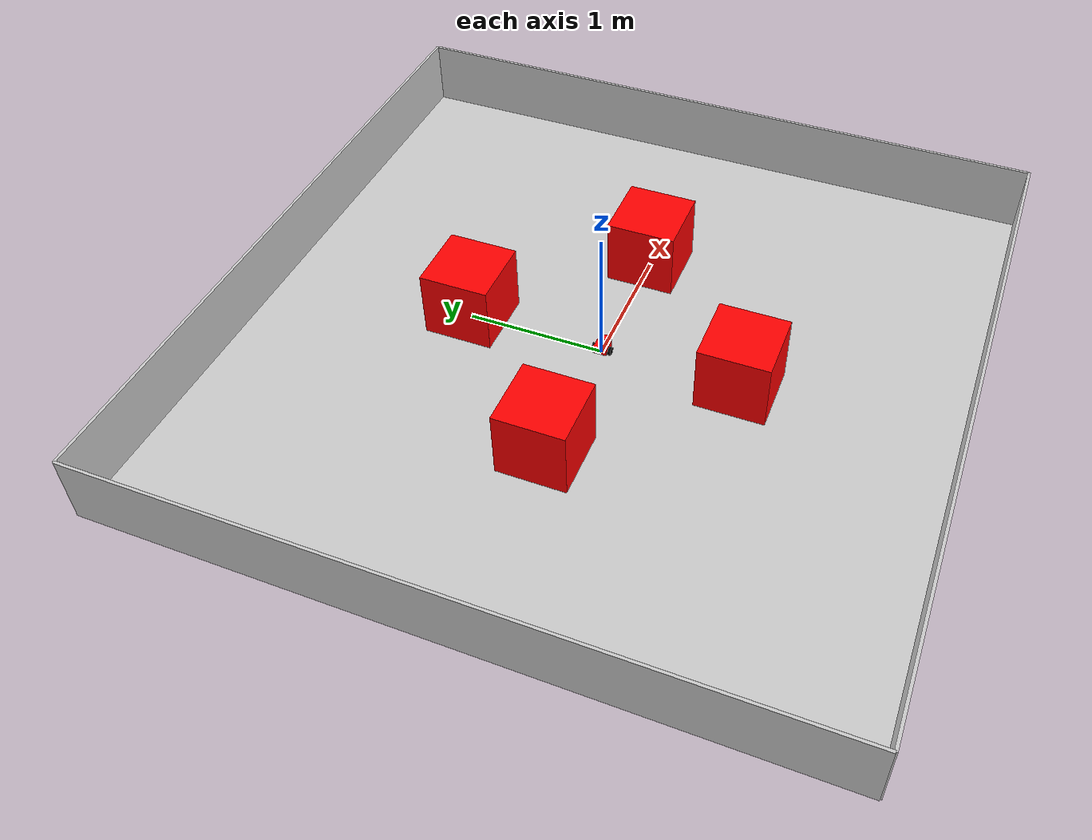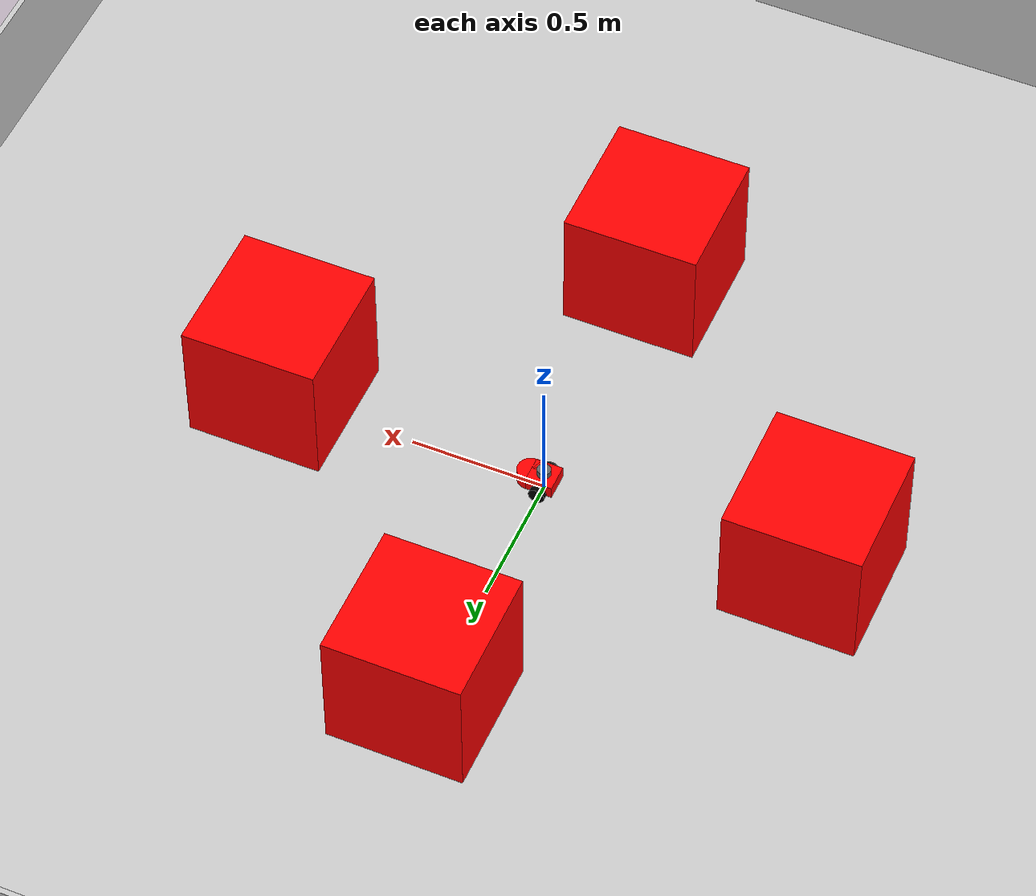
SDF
<?xml version="1.0" ?>
<sdf version="1.8">
    <world name="diff_drive_world">

        <scene>
            <grid>false</grid>
        </scene>

        <physics name="1ms" type="ignored">
            <max_step_size>0.001</max_step_size>
            <real_time_factor>1.0</real_time_factor>
        </physics>

        <!-- PLUGINS -->
        <plugin
            filename="gz-sim-physics-system"
            name="gz::sim::systems::Physics">
        </plugin>
        <plugin
            filename="gz-sim-user-commands-system"
            name="gz::sim::systems::UserCommands">
        </plugin>
        <plugin
            filename="gz-sim-scene-broadcaster-system"
            name="gz::sim::systems::SceneBroadcaster">
        </plugin>
        <plugin
            filename="gz-sim-sensors-system"
            name="gz::sim::systems::Sensors">
            <render_engine>ogre2</render_engine>
        </plugin>

        <light type="directional" name="sun">
            <cast_shadows>true</cast_shadows>
            <pose>0 0 10 0 0 0</pose>
            <diffuse>0.8 0.8 0.8 1</diffuse>
            <specular>0.2 0.2 0.2 1</specular>
            <attenuation>
                <range>1000</range>
                <constant>0.9</constant>
                <linear>0.01</linear>
                <quadratic>0.001</quadratic>
            </attenuation>
            <direction>-0.5 0.1 -0.9</direction>
        </light>

        <!-- MODELS -->
        <model name="arena">
            <static>true</static>
            <link name="floor">
                <collision name="collision">
                    <geometry>
                        <plane>
                            <normal>0 0 1</normal>
                        </plane>
                    </geometry>
                </collision>
                <visual name="visual">
                    <geometry>
                        <plane>
                            <normal>0 0 1</normal>
                            <size>5 5</size>
                        </plane>
                    </geometry>
                    <material>
                        <ambient>0.8 0.8 0.8 1</ambient>
                        <diffuse>0.8 0.8 0.8 1</diffuse>
                        <specular>0.8 0.8 0.8 1</specular>
                    </material>
                </visual>
            </link>

            <link name="w1">
                <pose relative_to="floor">0 2.5 0.25 0 0 0</pose>
                <collision name="collision">
                    <geometry>
                        <box>
                            <size>5 0.02 0.5</size>
                        </box>
                    </geometry>
                </collision>
                <visual name="visual">
                    <geometry>
                        <box>
                            <size>5 0.02 0.5</size>
                        </box>
                    </geometry>
                    <material>
                        <ambient>0.8 0.8 0.8 1</ambient>
                        <diffuse>0.8 0.8 0.8 1</diffuse>
                        <specular>0.8 0.8 0.8 1</specular>
                    </material>
                </visual>
            </link>
            <link name="w2">
                <pose relative_to="floor">0 -2.5 0.25 0 0 0</pose>
                <collision name="collision">
                    <geometry>
                        <box>
                            <size>5 0.02 0.5</size>
                        </box>
                    </geometry>
                </collision>
                <visual name="visual">
                    <geometry>
                        <box>
                            <size>5 0.02 0.5</size>
                        </box>
                    </geometry>
                    <material>
                        <ambient>0.8 0.8 0.8 1</ambient>
                        <diffuse>0.8 0.8 0.8 1</diffuse>
                        <specular>0.8 0.8 0.8 1</specular>
                    </material>
                </visual>
            </link>
            <link name="w3">
                <pose relative_to="floor">2.5 0 0.25 0 0 0</pose>
                <collision name="collision">
                    <geometry>
                        <box>
                            <size>0.02 5 0.5</size>
                        </box>
                    </geometry>
                </collision>
                <visual name="visual">
                    <geometry>
                        <box>
                            <size>0.02 5 0.5</size>
                        </box>
                    </geometry>
                    <material>
                        <ambient>0.8 0.8 0.8 1</ambient>
                        <diffuse>0.8 0.8 0.8 1</diffuse>
                        <specular>0.8 0.8 0.8 1</specular>
                    </material>
                </visual>
            </link>
            <link name="w4">
                <pose relative_to="floor">-2.5 0 0.25 0 0 0</pose>
                <collision name="collision">
                    <geometry>
                        <box>
                            <size>0.02 5 0.5</size>
                        </box>
                    </geometry>
                </collision>
                <visual name="visual">
                    <geometry>
                        <box>
                            <size>0.02 5 0.5</size>
                        </box>
                    </geometry>
                    <material>
                        <ambient>0.8 0.8 0.8 1</ambient>
                        <diffuse>0.8 0.8 0.8 1</diffuse>
                        <specular>0.8 0.8 0.8 1</specular>
                    </material>
                </visual>
            </link>
        </model>

        <model name='diff_drive' canonical_link='base_link'>

            <pose relative_to='world'>0 0 0 0 0 0</pose>

            <!-- Robot body -->
            <link name="base_link">
                <pose relative_to='__model__'>0 0 0.05 0 0 0</pose>
                <inertial>
                    <mass>1.14395</mass>
                    <inertia>
                        <ixx>0.095329</ixx>
                        <ixy>0</ixy>
                        <ixz>0</ixz>
                        <iyy>0.381317</iyy>
                        <iyz>0</iyz>
                        <izz>0.476646</izz>
                    </inertia>
                </inertial>
                <visual name="visual">
                    <geometry>
                        <box>
                            <size>0.1 0.1 0.05</size>
                        </box>
                    </geometry>
                    <material>
                        <ambient>1.0 0.0 0.0 1</ambient>
                        <diffuse>1.0 0.0 0.0 1</diffuse>
                        <specular>1.0 0.0 0.0 1</specular>
                    </material>
                </visual>
                <collision name="collision">
                    <geometry>
                        <box>
                            <size>0.1 0.1 0.05</size>
                        </box>
                    </geometry>
                </collision>
            </link>

            <joint name="base_link_to_front_frame" type="fixed">
                <pose relative_to="base_link">0.05 0 0 0 0 0</pose>
                <parent>base_link</parent>
                <child>front_frame</child>
            </joint>

            <link name="front_frame">
                <pose relative_to="base_link_to_front_frame"/>
                <inertial>
                    <mass>1.14395</mass>
                    <inertia>
                        <ixx>0.095329</ixx>
                        <ixy>0</ixy>
                        <ixz>0</ixz>
                        <iyy>0.381317</iyy>
                        <iyz>0</iyz>
                        <izz>0.476646</izz>
                    </inertia>
                </inertial>
                <visual name="visual">
                    <geometry>
                        <cylinder>
                            <radius>0.05</radius>
                            <length>0.05</length>
                        </cylinder>
                    </geometry>
                    <material>
                        <ambient>1.0 0.0 0.0 1</ambient>
                        <diffuse>1.0 0.0 0.0 1</diffuse>
                        <specular>1.0 0.0 0.0 1</specular>
                    </material>
                </visual>
                <collision name="collision">
                    <geometry>
                        <cylinder>
                            <radius>0.05</radius>
                            <length>0.05</length>
                        </cylinder>
                    </geometry>
                </collision>
            </link>

            <joint name="base_link_to_lidar" type="fixed">
                <pose relative_to="base_link">0 0 0.0375 0 0 0</pose>
                <parent>base_link</parent>
                <child>lidar</child>
            </joint>

            <link name="lidar">
                <pose relative_to="base_link_to_lidar"/>
                <inertial>
                    <mass>0.5</mass>
                    <inertia>
                        <ixx>0.000104</ixx>
                        <ixy>0</ixy>
                        <ixz>0</ixz>
                        <iyy>0.000104</iyy>
                        <iyz>0</iyz>
                        <izz>0.000156</izz>
                    </inertia>
                </inertial>
                <visual name="visual">
                    <geometry>
                        <cylinder>
                            <radius>0.025</radius>
                            <length>0.025</length>
                        </cylinder>
                    </geometry>
                    <material>
                        <ambient>0.4 0.4 0.4 1</ambient>
                        <diffuse>0.4 0.4 0.4 1</diffuse>
                        <specular>0.4 0.4 0.4 1</specular>
                    </material>
                </visual>
                <collision name="collision">
                    <geometry>
                        <cylinder>
                            <radius>0.025</radius>
                            <length>0.025</length>
                        </cylinder>
                    </geometry>
                </collision>

                <sensor name='gpu_lidar' type='gpu_lidar'>"
                    <pose relative_to='lidar'>0 0 0 0 0 0</pose>
                    <ignition_frame_id>diff_drive/lidar</ignition_frame_id>
                    <topic>scan</topic>
                    <update_rate>10</update_rate>
                    <ray>
                        <scan>
                            <horizontal>
                                <samples>640</samples>
                                <resolution>1</resolution>
                                <min_angle>-3.14</min_angle>
                                <max_angle>3.14</max_angle>
                            </horizontal>
                            <vertical>
                                <samples>1</samples>
                                <resolution>0.01</resolution>
                                <min_angle>0</min_angle>
                                <max_angle>0</max_angle>
                            </vertical>
                        </scan>
                        <range>
                            <min>0.08</min>
                            <max>10.0</max>
                            <resolution>0.01</resolution>
                        </range>
                    </ray>
                    <always_on>1</always_on>
                    <visualize>true</visualize>
                </sensor>
            </link>

            <!-- Wheel 1 -->
            <joint name="motor1" type="revolute">
                <pose relative_to='wheel1'/>
                <parent>base_link</parent>
                <child>wheel1</child>
                <axis>
                    <xyz expressed_in='__model__'>0 1 0</xyz> <!--can be descired to any frame or even arbitrary frames-->
                    <limit>
                        <lower>-1.79769e+308</lower>    <!--negative infinity-->
                        <upper>1.79769e+308</upper>     <!--positive infinity-->
                    </limit>
                </axis>
            </joint>

            <link name="wheel1">
                <pose relative_to="base_link">0 0.06 -0.02 1.5707 0 0</pose>
                <inertial>
                    <mass>0.5</mass>
                    <inertia>
                        <ixx>0.000129</ixx>
                        <ixy>0</ixy>
                        <ixz>0</ixz>
                        <iyy>0.000129</iyy>
                        <iyz>0</iyz>
                        <izz>0.000225</izz>
                    </inertia>
                </inertial>
                <visual name="visual">
                    <geometry>
                        <cylinder>
                            <radius>0.03</radius>
                            <length>0.02</length>
                        </cylinder>
                    </geometry>
                    <material>
                        <ambient>0.0 0.0 0.0 1</ambient>
                        <diffuse>0.0 0.0 0.0 1</diffuse>
                        <specular>0.0 0.0 0.0 1</specular>
                    </material>
                </visual>
                <collision name="collision">
                    <geometry>
                        <cylinder>
                            <radius>0.03</radius>
                            <length>0.02</length>
                        </cylinder>
                    </geometry>
                </collision>
            </link>

            <!-- Wheel 2 -->
            <joint name="motor2" type="revolute">
                <pose relative_to='wheel2'/>
                <parent>base_link</parent>
                <child>wheel2</child>
                <axis>
                    <xyz expressed_in='__model__'>0 1 0</xyz> <!--can be descired to any frame or even arbitrary frames-->
                    <limit>
                        <lower>-1.79769e+308</lower>    <!--negative infinity-->
                        <upper>1.79769e+308</upper>     <!--positive infinity-->
                    </limit>
                </axis>
            </joint>

            <link name="wheel2">
                <pose relative_to="base_link">0 -0.06 -0.02 1.5707 0 0</pose>
                <inertial>
                    <mass>0.5</mass>
                    <inertia>
                        <ixx>0.000129</ixx>
                        <ixy>0</ixy>
                        <ixz>0</ixz>
                        <iyy>0.000129</iyy>
                        <iyz>0</iyz>
                        <izz>0.000225</izz>
                    </inertia>
                </inertial>
                <visual name="visual">
                    <geometry>
                        <cylinder>
                            <radius>0.03</radius>
                            <length>0.02</length>
                        </cylinder>
                    </geometry>
                    <material>
                        <ambient>0.0 0.0 0.0 1</ambient>
                        <diffuse>0.0 0.0 0.0 1</diffuse>
                        <specular>0.0 0.0 0.0 1</specular>
                    </material>
                </visual>
                <collision name="collision">
                    <geometry>
                        <cylinder>
                            <radius>0.03</radius>
                            <length>0.02</length>
                        </cylinder>
                    </geometry>
                </collision>
            </link>

            <!-- Caster Wheel -->
            <joint name="base_link_to_caster" type="ball">
                <pose relative_to='caster'/>
                <parent>base_link</parent>
                <child>caster</child>
            </joint>

            <link name="caster">
                <pose relative_to="base_link">0.06 0 -0.0375 0 0 0</pose>
                <inertial>
                    <mass>0.5</mass>
                    <inertia>
                        <ixx>0.000031</ixx>
                        <ixy>0</ixy>
                        <ixz>0</ixz>
                        <iyy>0.000031</iyy>
                        <iyz>0</iyz>
                        <izz>0.000031</izz>
                    </inertia>
                </inertial>
                <visual name="visual">
                    <geometry>
                        <sphere>
                            <radius>0.0125</radius>
                        </sphere>
                    </geometry>
                    <material>
                        <ambient>0.0 0.0 0.0 1</ambient>
                        <diffuse>0.0 0.0 0.0 1</diffuse>
                        <specular>0.0 0.0 0.0 1</specular>
                    </material>
                </visual>
                <collision name="collision">
                    <geometry>
                        <sphere>
                            <radius>0.0125</radius>
                        </sphere>
                    </geometry>
                </collision>
            </link>

            <plugin
                filename="gz-sim-diff-drive-system"
                name="gz::sim::systems::DiffDrive">
                <left_joint>motor1</left_joint>
                <right_joint>motor2</right_joint>
                <wheel_separation>0.1</wheel_separation>
                <wheel_radius>0.03</wheel_radius>
                <odom_publish_frequency>1</odom_publish_frequency>
                <topic>cmd_vel</topic>
            </plugin>

            <plugin
                filename="gz-sim-joint-state-publisher-system"
                name="gz::sim::systems::JointStatePublisher">
            </plugin>

            <plugin
                filename="ignition-gazebo-pose-publisher-system"
                name="ignition::gazebo::systems::PosePublisher">
                <publish_link_pose>true</publish_link_pose>

                <use_pose_vector_msg>true</use_pose_vector_msg>
            </plugin>

        </model>

        <!-- Obstacles -->
        <model name="box1">
            <pose>0 -1 0.25 0 0 0</pose>
            <link name="box_link">
                <inertial>
                <inertia>
                    <ixx>1</ixx>
                    <ixy>0</ixy>
                    <ixz>0</ixz>
                    <iyy>1</iyy>
                    <iyz>0</iyz>
                    <izz>1</izz>
                </inertia>
                <mass>1.0</mass>
                </inertial>
                <collision name="box_collision">
                    <geometry>
                        <box>
                            <size>0.5 0.5 0.5</size>
                        </box>
                    </geometry>
                </collision>
                <visual name="box_visual">
                    <geometry>
                        <box>
                            <size>0.5 0.5 0.5</size>
                        </box>
                    </geometry>
                <material>
                    <ambient>1 0 0 1</ambient>
                    <diffuse>1 0 0 1</diffuse>
                    <specular>1 0 0 1</specular>
                </material>
                </visual>
            </link>
        </model>

        <model name="box2">
            <pose>0 1 0.25 0 0 0</pose>
            <link name="box_link">
                <inertial>
                <inertia>
                    <ixx>1</ixx>
                    <ixy>0</ixy>
                    <ixz>0</ixz>
                    <iyy>1</iyy>
                    <iyz>0</iyz>
                    <izz>1</izz>
                </inertia>
                <mass>1.0</mass>
                </inertial>
                <collision name="box_collision">
                    <geometry>
                        <box>
                            <size>0.5 0.5 0.5</size>
                        </box>
                    </geometry>
                </collision>
                <visual name="box_visual">
                    <geometry>
                        <box>
                            <size>0.5 0.5 0.5</size>
                        </box>
                    </geometry>
                <material>
                    <ambient>1 0 0 1</ambient>
                    <diffuse>1 0 0 1</diffuse>
                    <specular>1 0 0 1</specular>
                </material>
                </visual>
            </link>
        </model>

        <model name="box3">
            <pose>-1 0 0.25 0 0 0</pose>
            <link name="box_link">
                <inertial>
                <inertia>
                    <ixx>1</ixx>
                    <ixy>0</ixy>
                    <ixz>0</ixz>
                    <iyy>1</iyy>
                    <iyz>0</iyz>
                    <izz>1</izz>
                </inertia>
                <mass>1.0</mass>
                </inertial>
                <collision name="box_collision">
                    <geometry>
                        <box>
                            <size>0.5 0.5 0.5</size>
                        </box>
                    </geometry>
                </collision>
                <visual name="box_visual">
                    <geometry>
                        <box>
                            <size>0.5 0.5 0.5</size>
                        </box>
                    </geometry>
                <material>
                    <ambient>1 0 0 1</ambient>
                    <diffuse>1 0 0 1</diffuse>
                    <specular>1 0 0 1</specular>
                </material>
                </visual>
            </link>
        </model>

        <model name="box4">
            <pose>1 0 0.25 0 0 0</pose>
            <link name="box_link">
                <inertial>
                <inertia>
                    <ixx>1</ixx>
                    <ixy>0</ixy>
                    <ixz>0</ixz>
                    <iyy>1</iyy>
                    <iyz>0</iyz>
                    <izz>1</izz>
                </inertia>
                <mass>1.0</mass>
                </inertial>
                <collision name="box_collision">
                    <geometry>
                        <box>
                            <size>0.5 0.5 0.5</size>
                        </box>
                    </geometry>
                </collision>
                <visual name="box_visual">
                    <geometry>
                        <box>
                            <size>0.5 0.5 0.5</size>
                        </box>
                    </geometry>
                <material>
                    <ambient>1 0 0 1</ambient>
                    <diffuse>1 0 0 1</diffuse>
                    <specular>1 0 0 1</specular>
                </material>
                </visual>
            </link>
        </model>

    </world>
</sdf>
